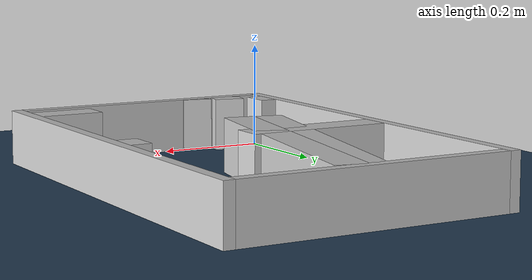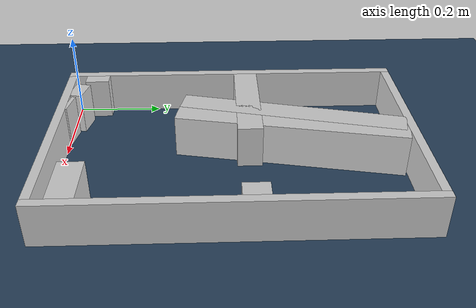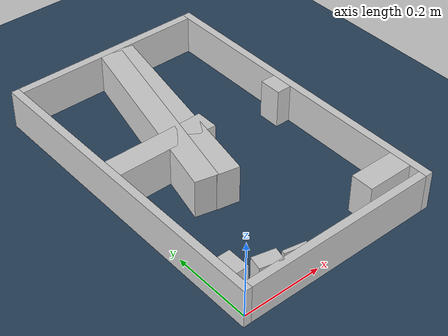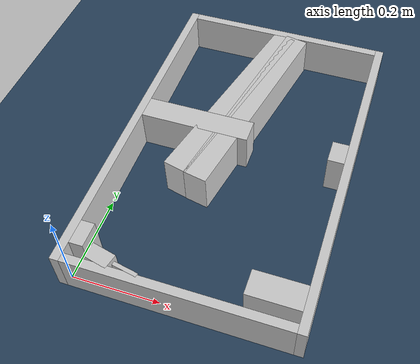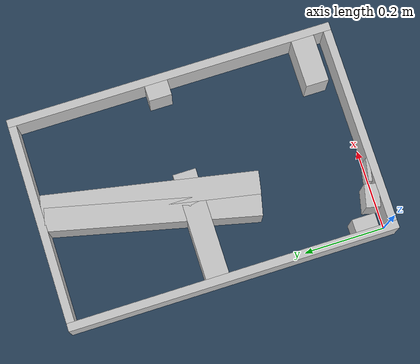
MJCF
<?xml version="1.0" ?>
<mujoco model="generated_real_template">
  <compiler angle="degree"/>
  <option timestep="0.002" integrator="implicitfast" iterations="100" cone="elliptic"/>
  <default>
    <geom density="1"/>
  </default>
  <asset>
    <texture builtin="gradient" height="3072" rgb1="0.3 0.5 0.7" rgb2="0 0 0" type="skybox" width="512"/>
    <texture builtin="checker" height="300" mark="edge" markrgb="0.8 0.8 0.8" name="groundplane" rgb1="0.2 0.3 0.4" rgb2="0.1 0.2 0.3" type="2d" width="300"/>
    <material name="groundplane" reflectance="0.2" texrepeat="5 5" texture="groundplane" texuniform="true"/>
  </asset>
  <worldbody>
    <light dir="0 0 -1" directional="true" pos="0 0 1.5"/>
    <geom name="floor" type="plane" condim="4" friction="0.5 0.005 0.001" material="groundplane" size="0 0 0.05"/>
    <body name="walls">
      <geom name="wall_boundary_left" type="box" condim="4" friction="1.0 0.005 0.0001" rgba="0.8 0.8 0.8 1" pos="-0.010000 0.387500 0.050000" euler="0 0 0.000000" size="0.010000 0.407500 0.050000"/>
      <geom name="wall_boundary_right" type="box" condim="4" friction="1.0 0.005 0.0001" rgba="0.8 0.8 0.8 1" pos="0.500000 0.387500 0.050000" euler="0 0 0.000000" size="0.010000 0.407500 0.050000"/>
      <geom name="wall_boundary_bottom" type="box" condim="4" friction="1.0 0.005 0.0001" rgba="0.8 0.8 0.8 1" pos="0.245000 -0.010000 0.050000" euler="0 0 0.000000" size="0.245000 0.010000 0.050000"/>
      <geom name="wall_boundary_top" type="box" condim="4" friction="1.0 0.005 0.0001" rgba="0.8 0.8 0.8 1" pos="0.245000 0.785000 0.050000" euler="0 0 0.000000" size="0.245000 0.010000 0.050000"/>
      <geom name="wall_inner_1_1" type="box" condim="4" friction="1.0 0.005 0.0001" rgba="0.8 0.8 0.8 1" pos="0.191269 0.523687 0.050000" euler="0 0 -103.167108" size="0.258098 0.028500 0.050000"/>
      <geom name="wall_inner_1_2" type="box" condim="4" friction="1.0 0.005 0.0001" rgba="0.8 0.8 0.8 1" pos="0.072691 0.016819 0.050000" euler="0 0 -103.167108" size="0.017273 0.028500 0.050000"/>
      <geom name="wall_inner_2_1" type="box" condim="4" friction="1.0 0.005 0.0001" rgba="0.8 0.8 0.8 1" pos="0.015785 0.053675 0.050000" euler="0 0 0.000000" size="0.015785 0.028500 0.050000"/>
      <geom name="wall_inner_2_2" type="box" condim="4" friction="1.0 0.005 0.0001" rgba="0.8 0.8 0.8 1" pos="0.431081 0.053675 0.050000" euler="0 0 0.000000" size="0.058919 0.028500 0.050000"/>
      <geom name="wall_inner_3_1" type="box" condim="4" friction="1.0 0.005 0.0001" rgba="0.8 0.8 0.8 1" pos="0.134226 0.004440 0.050000" euler="0 0 79.130395" size="0.004521 0.028500 0.050000"/>
      <geom name="wall_inner_3_2" type="box" condim="4" friction="1.0 0.005 0.0001" rgba="0.8 0.8 0.8 1" pos="0.232833 0.517964 0.050000" euler="0 0 79.130395" size="0.261732 0.028500 0.050000"/>
      <geom name="wall_inner_4_1" type="box" condim="4" friction="1.0 0.005 0.0001" rgba="0.8 0.8 0.8 1" pos="0.130884 0.425245 0.050000" euler="0 0 0.000000" size="0.130884 0.028500 0.050000"/>
      <geom name="wall_inner_4_2" type="box" condim="4" friction="1.0 0.005 0.0001" rgba="0.8 0.8 0.8 1" pos="0.470871 0.425245 0.050000" euler="0 0 0.000000" size="0.019129 0.028500 0.050000"/>
    </body>
  </worldbody>
</mujoco>
